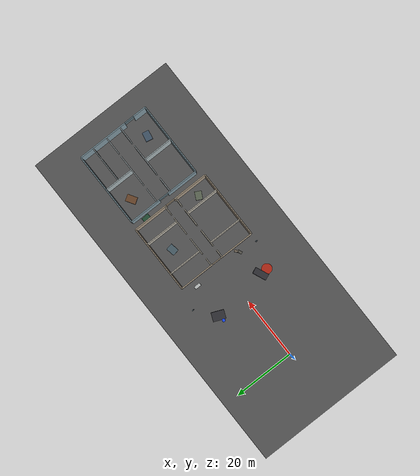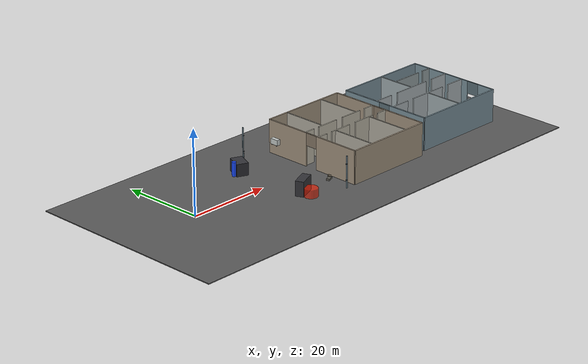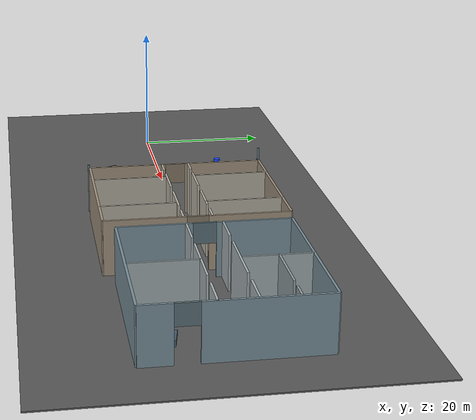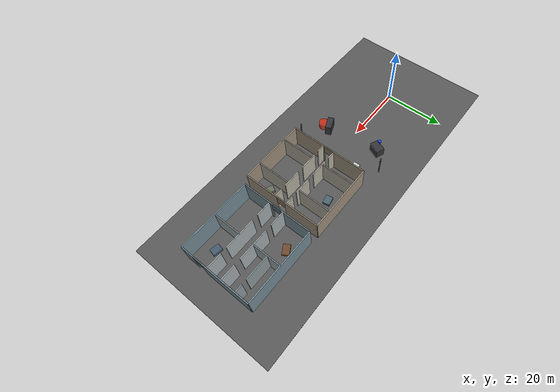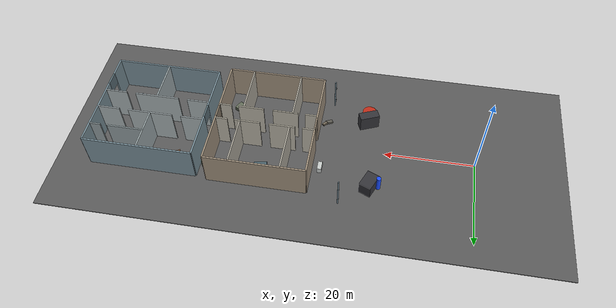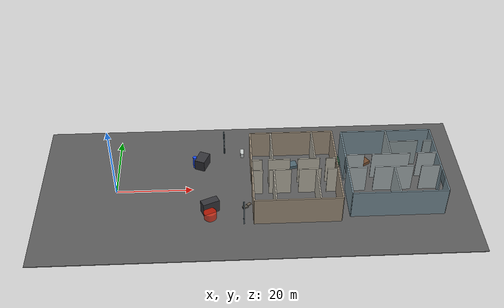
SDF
<sdf version="1.9">
 <world name="fire_scout_floor">
  <model name="floor">
   <static>true</static>
   <pose>36 0 0 0 0 0</pose>
   <link name="floor_link">
    <collision name="floor_collision">
     <pose>0 0 -0.1 0 0 0</pose>
     <geometry><box><size>112 50 0.2</size></box></geometry>
    </collision>
    <visual name="floor_visual">
     <pose>0 0 -0.1 0 0 0</pose>
     <geometry><box><size>112 50 0.2</size></box></geometry>
     <material><ambient>0.30 0.30 0.30 1</ambient><diffuse>0.35 0.35 0.35 1</diffuse></material>
    </visual>
   </link>
  </model>
  <model name="obstacle_region2">
   <static>true</static>
   <pose>22.5 9.6 1.5 0 0 -0.4</pose>
   <link name="link">
    <collision name="collision"><geometry><box><size>2.8 4 3</size></box></geometry></collision>
    <visual name="visual">
     <geometry><box><size>2.8 4 3</size></box></geometry>
     <material><ambient>0.20 0.20 0.22 1</ambient><diffuse>0.20 0.20 0.22 1</diffuse></material>
    </visual>
   </link>
  </model>
  <model name="obstacle_region4">
   <static>true</static>
   <pose>24.5 -8 1.8 0 0 0.4</pose>
   <link name="link">
    <collision name="collision"><geometry><box><size>4.4 2 3.6</size></box></geometry></collision>
    <visual name="visual">
     <geometry><box><size>4.4 2 3.6</size></box></geometry>
     <material><ambient>0.20 0.20 0.22 1</ambient><diffuse>0.20 0.20 0.22 1</diffuse></material>
    </visual>
   </link>
  </model>
  <model name="fire_02">
   <static>true</static>
   <pose>24.5 -10.4 1 0 0 0</pose>
   <link name="link">
    <visual name="visual">
     <geometry><cylinder><radius>1.6</radius><length>2</length></cylinder></geometry>
     <material><ambient>1.0 0.12 0.0 0.65</ambient><diffuse>1.0 0.12 0.0 0.65</diffuse></material>
    </visual>
   </link>
  </model>
  <model name="victim_02">
   <static>true</static>
   <pose>20.5 9.2 1.7 0 0 0</pose>
   <link name="link">
    <collision name="collision">
     <geometry><cylinder><radius>0.5</radius><length>3.4</length></cylinder></geometry>
    </collision>
    <visual name="visual">
     <geometry><cylinder><radius>0.5</radius><length>3.4</length></cylinder></geometry>
     <material><ambient>0.1 0.3 1.0 1</ambient><diffuse>0.1 0.3 1.0 1</diffuse></material>
    </visual>
   </link>
  </model>
  <model name="ac_outdoor_east">
   <static>true</static>
   <pose>33.23 9 4.4 0 0 1.5707963</pose>
   <link name="housing">
    <collision name="housing_collision"><geometry><box><size>2 0.9 1.3</size></box></geometry></collision>
    <visual name="housing_visual">
     <geometry><box><size>2 0.9 1.3</size></box></geometry>
     <material><ambient>0.78 0.80 0.79 1</ambient><diffuse>0.78 0.80 0.79 1</diffuse></material>
    </visual>
    <visual name="fan_visual">
     <pose>-0.36 -0.454 0 1.5707963 0 0</pose>
     <geometry><cylinder><radius>0.46</radius><length>0.016</length></cylinder></geometry>
     <material><ambient>0.12 0.14 0.15 1</ambient><diffuse>0.12 0.14 0.15 1</diffuse></material>
    </visual>
    <visual name="vent_0_visual">
     <pose>0.58 -0.46 -0.36 0 0 0</pose>
     <geometry><box><size>0.5 0.024 0.05</size></box></geometry>
     <material><ambient>0.24 0.26 0.27 1</ambient><diffuse>0.24 0.26 0.27 1</diffuse></material>
    </visual>
    <visual name="vent_1_visual">
     <pose>0.58 -0.46 -0.12 0 0 0</pose>
     <geometry><box><size>0.5 0.024 0.05</size></box></geometry>
     <material><ambient>0.24 0.26 0.27 1</ambient><diffuse>0.24 0.26 0.27 1</diffuse></material>
    </visual>
    <visual name="vent_2_visual">
     <pose>0.58 -0.46 0.12 0 0 0</pose>
     <geometry><box><size>0.5 0.024 0.05</size></box></geometry>
     <material><ambient>0.24 0.26 0.27 1</ambient><diffuse>0.24 0.26 0.27 1</diffuse></material>
    </visual>
    <visual name="vent_3_visual">
     <pose>0.58 -0.46 0.36 0 0 0</pose>
     <geometry><box><size>0.5 0.024 0.05</size></box></geometry>
     <material><ambient>0.24 0.26 0.27 1</ambient><diffuse>0.24 0.26 0.27 1</diffuse></material>
    </visual>
    <collision name="bracket_0_collision">
     <pose>-0.7 0.1 -0.74 0 0 0</pose>
     <geometry><box><size>0.12 0.72 0.16</size></box></geometry>
    </collision>
    <visual name="bracket_0_visual">
     <pose>-0.7 0.1 -0.74 0 0 0</pose>
     <geometry><box><size>0.12 0.72 0.16</size></box></geometry>
     <material><ambient>0.35 0.38 0.40 1</ambient><diffuse>0.35 0.38 0.40 1</diffuse></material>
    </visual>
    <collision name="bracket_1_collision">
     <pose>0.7 0.1 -0.74 0 0 0</pose>
     <geometry><box><size>0.12 0.72 0.16</size></box></geometry>
    </collision>
    <visual name="bracket_1_visual">
     <pose>0.7 0.1 -0.74 0 0 0</pose>
     <geometry><box><size>0.12 0.72 0.16</size></box></geometry>
     <material><ambient>0.35 0.38 0.40 1</ambient><diffuse>0.35 0.38 0.40 1</diffuse></material>
    </visual>
   </link>
  </model>
  <model name="water_pipe_north">
   <static>true</static>
   <pose>28.5 14.48 3.8 0 0 3.1415927</pose>
   <link name="pipe">
    <collision name="pipe_collision">
     <geometry><cylinder><radius>0.16</radius><length>7.6</length></cylinder></geometry>
    </collision>
    <visual name="pipe_visual">
     <geometry><cylinder><radius>0.16</radius><length>7.6</length></cylinder></geometry>
     <material><ambient>0.40 0.48 0.52 1</ambient><diffuse>0.40 0.48 0.52 1</diffuse></material>
    </visual>
    <collision name="wall_mount_0_collision">
     <pose>0 0.17 -1.9 0 0 0</pose>
     <geometry><box><size>0.24 0.22 0.16</size></box></geometry>
    </collision>
    <visual name="wall_mount_0_visual">
     <pose>0 0.17 -1.9 0 0 0</pose>
     <geometry><box><size>0.24 0.22 0.16</size></box></geometry>
     <material><ambient>0.24 0.28 0.31 1</ambient><diffuse>0.24 0.28 0.31 1</diffuse></material>
    </visual>
    <collision name="wall_mount_1_collision">
     <pose>0 0.17 1.9 0 0 0</pose>
     <geometry><box><size>0.24 0.22 0.16</size></box></geometry>
    </collision>
    <visual name="wall_mount_1_visual">
     <pose>0 0.17 1.9 0 0 0</pose>
     <geometry><box><size>0.24 0.22 0.16</size></box></geometry>
     <material><ambient>0.24 0.28 0.31 1</ambient><diffuse>0.24 0.28 0.31 1</diffuse></material>
    </visual>
   </link>
  </model>
  <model name="water_pipe_east">
   <static>true</static>
   <pose>32.98 -13 3.8 0 0 1.5707963</pose>
   <link name="pipe">
    <collision name="pipe_collision">
     <geometry><cylinder><radius>0.16</radius><length>7.6</length></cylinder></geometry>
    </collision>
    <visual name="pipe_visual">
     <geometry><cylinder><radius>0.16</radius><length>7.6</length></cylinder></geometry>
     <material><ambient>0.40 0.48 0.52 1</ambient><diffuse>0.40 0.48 0.52 1</diffuse></material>
    </visual>
    <collision name="wall_mount_0_collision">
     <pose>0 0.17 -1.9 0 0 0</pose>
     <geometry><box><size>0.24 0.22 0.16</size></box></geometry>
    </collision>
    <visual name="wall_mount_0_visual">
     <pose>0 0.17 -1.9 0 0 0</pose>
     <geometry><box><size>0.24 0.22 0.16</size></box></geometry>
     <material><ambient>0.24 0.28 0.31 1</ambient><diffuse>0.24 0.28 0.31 1</diffuse></material>
    </visual>
    <collision name="wall_mount_1_collision">
     <pose>0 0.17 1.9 0 0 0</pose>
     <geometry><box><size>0.24 0.22 0.16</size></box></geometry>
    </collision>
    <visual name="wall_mount_1_visual">
     <pose>0 0.17 1.9 0 0 0</pose>
     <geometry><box><size>0.24 0.22 0.16</size></box></geometry>
     <material><ambient>0.24 0.28 0.31 1</ambient><diffuse>0.24 0.28 0.31 1</diffuse></material>
    </visual>
   </link>
  </model>
  <model name="adjacent_building_b">
   <static>true</static>
   <pose>46.5 0 0 0 0 0</pose>
   <link name="structure">
    <collision name="north_wall_collision">
     <pose>0 13 4 0 0 0</pose>
     <geometry><box><size>22 0.35 8</size></box></geometry>
    </collision>
    <visual name="north_wall_visual">
     <pose>0 13 4 0 0 0</pose>
     <geometry><box><size>22 0.35 8</size></box></geometry>
     <material><ambient>0.64 0.58 0.50 1</ambient><diffuse>0.64 0.58 0.50 1</diffuse></material>
    </visual>
    <collision name="south_wall_collision">
     <pose>0 -13 4 0 0 0</pose>
     <geometry><box><size>22 0.35 8</size></box></geometry>
    </collision>
    <visual name="south_wall_visual">
     <pose>0 -13 4 0 0 0</pose>
     <geometry><box><size>22 0.35 8</size></box></geometry>
     <material><ambient>0.64 0.58 0.50 1</ambient><diffuse>0.64 0.58 0.50 1</diffuse></material>
    </visual>
    <collision name="west_wall_south_collision">
     <pose>-11 -7.25 4 0 0 0</pose>
     <geometry><box><size>0.35 11.5 8</size></box></geometry>
    </collision>
    <visual name="west_wall_south_visual">
     <pose>-11 -7.25 4 0 0 0</pose>
     <geometry><box><size>0.35 11.5 8</size></box></geometry>
     <material><ambient>0.64 0.58 0.50 1</ambient><diffuse>0.64 0.58 0.50 1</diffuse></material>
    </visual>
    <collision name="west_wall_north_collision">
     <pose>-11 7.25 4 0 0 0</pose>
     <geometry><box><size>0.35 11.5 8</size></box></geometry>
    </collision>
    <visual name="west_wall_north_visual">
     <pose>-11 7.25 4 0 0 0</pose>
     <geometry><box><size>0.35 11.5 8</size></box></geometry>
     <material><ambient>0.64 0.58 0.50 1</ambient><diffuse>0.64 0.58 0.50 1</diffuse></material>
    </visual>
    <collision name="west_entry_header_collision">
     <pose>-11 0 6.5 0 0 0</pose>
     <geometry><box><size>0.35 3 3</size></box></geometry>
    </collision>
    <visual name="west_entry_header_visual">
     <pose>-11 0 6.5 0 0 0</pose>
     <geometry><box><size>0.35 3 3</size></box></geometry>
     <material><ambient>0.52 0.47 0.40 1</ambient><diffuse>0.52 0.47 0.40 1</diffuse></material>
    </visual>
    <collision name="east_wall_south_collision">
     <pose>11 -7.25 4 0 0 0</pose>
     <geometry><box><size>0.35 11.5 8</size></box></geometry>
    </collision>
    <visual name="east_wall_south_visual">
     <pose>11 -7.25 4 0 0 0</pose>
     <geometry><box><size>0.35 11.5 8</size></box></geometry>
     <material><ambient>0.64 0.58 0.50 1</ambient><diffuse>0.64 0.58 0.50 1</diffuse></material>
    </visual>
    <collision name="east_wall_north_collision">
     <pose>11 7.25 4 0 0 0</pose>
     <geometry><box><size>0.35 11.5 8</size></box></geometry>
    </collision>
    <visual name="east_wall_north_visual">
     <pose>11 7.25 4 0 0 0</pose>
     <geometry><box><size>0.35 11.5 8</size></box></geometry>
     <material><ambient>0.64 0.58 0.50 1</ambient><diffuse>0.64 0.58 0.50 1</diffuse></material>
    </visual>
    <collision name="east_entry_header_collision">
     <pose>11 0 6.5 0 0 0</pose>
     <geometry><box><size>0.35 3 3</size></box></geometry>
    </collision>
    <visual name="east_entry_header_visual">
     <pose>11 0 6.5 0 0 0</pose>
     <geometry><box><size>0.35 3 3</size></box></geometry>
     <material><ambient>0.52 0.47 0.40 1</ambient><diffuse>0.52 0.47 0.40 1</diffuse></material>
    </visual>
    <collision name="north_front_0_collision">
     <pose>-9.65 2 4 0 0 0</pose>
     <geometry><box><size>2.7 0.30 8</size></box></geometry>
    </collision>
    <visual name="north_front_0_visual">
     <pose>-9.65 2 4 0 0 0</pose>
     <geometry><box><size>2.7 0.30 8</size></box></geometry>
     <material><ambient>0.74 0.72 0.66 1</ambient><diffuse>0.74 0.72 0.66 1</diffuse></material>
    </visual>
    <collision name="north_front_1_collision">
     <pose>-3.85 2 4 0 0 0</pose>
     <geometry><box><size>5.7 0.30 8</size></box></geometry>
    </collision>
    <visual name="north_front_1_visual">
     <pose>-3.85 2 4 0 0 0</pose>
     <geometry><box><size>5.7 0.30 8</size></box></geometry>
     <material><ambient>0.74 0.72 0.66 1</ambient><diffuse>0.74 0.72 0.66 1</diffuse></material>
    </visual>
    <collision name="north_front_2_collision">
     <pose>3.85 2 4 0 0 0</pose>
     <geometry><box><size>5.7 0.30 8</size></box></geometry>
    </collision>
    <visual name="north_front_2_visual">
     <pose>3.85 2 4 0 0 0</pose>
     <geometry><box><size>5.7 0.30 8</size></box></geometry>
     <material><ambient>0.74 0.72 0.66 1</ambient><diffuse>0.74 0.72 0.66 1</diffuse></material>
    </visual>
    <collision name="north_front_3_collision">
     <pose>9.65 2 4 0 0 0</pose>
     <geometry><box><size>2.7 0.30 8</size></box></geometry>
    </collision>
    <visual name="north_front_3_visual">
     <pose>9.65 2 4 0 0 0</pose>
     <geometry><box><size>2.7 0.30 8</size></box></geometry>
     <material><ambient>0.74 0.72 0.66 1</ambient><diffuse>0.74 0.72 0.66 1</diffuse></material>
    </visual>
    <collision name="south_front_0_collision">
     <pose>-9.65 -2 4 0 0 0</pose>
     <geometry><box><size>2.7 0.30 8</size></box></geometry>
    </collision>
    <visual name="south_front_0_visual">
     <pose>-9.65 -2 4 0 0 0</pose>
     <geometry><box><size>2.7 0.30 8</size></box></geometry>
     <material><ambient>0.74 0.72 0.66 1</ambient><diffuse>0.74 0.72 0.66 1</diffuse></material>
    </visual>
    <collision name="south_front_1_collision">
     <pose>-3.85 -2 4 0 0 0</pose>
     <geometry><box><size>5.7 0.30 8</size></box></geometry>
    </collision>
    <visual name="south_front_1_visual">
     <pose>-3.85 -2 4 0 0 0</pose>
     <geometry><box><size>5.7 0.30 8</size></box></geometry>
     <material><ambient>0.74 0.72 0.66 1</ambient><diffuse>0.74 0.72 0.66 1</diffuse></material>
    </visual>
    <collision name="south_front_2_collision">
     <pose>3.85 -2 4 0 0 0</pose>
     <geometry><box><size>5.7 0.30 8</size></box></geometry>
    </collision>
    <visual name="south_front_2_visual">
     <pose>3.85 -2 4 0 0 0</pose>
     <geometry><box><size>5.7 0.30 8</size></box></geometry>
     <material><ambient>0.74 0.72 0.66 1</ambient><diffuse>0.74 0.72 0.66 1</diffuse></material>
    </visual>
    <collision name="south_front_3_collision">
     <pose>9.65 -2 4 0 0 0</pose>
     <geometry><box><size>2.7 0.30 8</size></box></geometry>
    </collision>
    <visual name="south_front_3_visual">
     <pose>9.65 -2 4 0 0 0</pose>
     <geometry><box><size>2.7 0.30 8</size></box></geometry>
     <material><ambient>0.74 0.72 0.66 1</ambient><diffuse>0.74 0.72 0.66 1</diffuse></material>
    </visual>
    <collision name="north_divider_w_collision">
     <pose>-5.5 7.5 4 0 0 0</pose>
     <geometry><box><size>0.30 11 8</size></box></geometry>
    </collision>
    <visual name="north_divider_w_visual">
     <pose>-5.5 7.5 4 0 0 0</pose>
     <geometry><box><size>0.30 11 8</size></box></geometry>
     <material><ambient>0.70 0.68 0.63 1</ambient><diffuse>0.70 0.68 0.63 1</diffuse></material>
    </visual>
    <collision name="north_divider_e_collision">
     <pose>5.5 7.5 4 0 0 0</pose>
     <geometry><box><size>0.30 11 8</size></box></geometry>
    </collision>
    <visual name="north_divider_e_visual">
     <pose>5.5 7.5 4 0 0 0</pose>
     <geometry><box><size>0.30 11 8</size></box></geometry>
     <material><ambient>0.70 0.68 0.63 1</ambient><diffuse>0.70 0.68 0.63 1</diffuse></material>
    </visual>
    <collision name="south_divider_w_collision">
     <pose>-5.5 -7.5 4 0 0 0</pose>
     <geometry><box><size>0.30 11 8</size></box></geometry>
    </collision>
    <visual name="south_divider_w_visual">
     <pose>-5.5 -7.5 4 0 0 0</pose>
     <geometry><box><size>0.30 11 8</size></box></geometry>
     <material><ambient>0.70 0.68 0.63 1</ambient><diffuse>0.70 0.68 0.63 1</diffuse></material>
    </visual>
    <collision name="south_divider_e_collision">
     <pose>5.5 -7.5 4 0 0 0</pose>
     <geometry><box><size>0.30 11 8</size></box></geometry>
    </collision>
    <visual name="south_divider_e_visual">
     <pose>5.5 -7.5 4 0 0 0</pose>
     <geometry><box><size>0.30 11 8</size></box></geometry>
     <material><ambient>0.70 0.68 0.63 1</ambient><diffuse>0.70 0.68 0.63 1</diffuse></material>
    </visual>
   </link>
  </model>
  <model name="adjacent_building_c">
   <static>true</static>
   <pose>72 0.5 0 0 0 0</pose>
   <link name="structure">
    <collision name="north_wall_collision">
     <pose>0 12 4 0 0 0</pose>
     <geometry><box><size>24 0.35 8</size></box></geometry>
    </collision>
    <visual name="north_wall_visual">
     <pose>0 12 4 0 0 0</pose>
     <geometry><box><size>24 0.35 8</size></box></geometry>
     <material><ambient>0.48 0.57 0.61 1</ambient><diffuse>0.48 0.57 0.61 1</diffuse></material>
    </visual>
    <collision name="south_wall_collision">
     <pose>0 -12 4 0 0 0</pose>
     <geometry><box><size>24 0.35 8</size></box></geometry>
    </collision>
    <visual name="south_wall_visual">
     <pose>0 -12 4 0 0 0</pose>
     <geometry><box><size>24 0.35 8</size></box></geometry>
     <material><ambient>0.48 0.57 0.61 1</ambient><diffuse>0.48 0.57 0.61 1</diffuse></material>
    </visual>
    <collision name="west_wall_south_collision">
     <pose>-12 -6.8 4 0 0 0</pose>
     <geometry><box><size>0.35 10.4 8</size></box></geometry>
    </collision>
    <visual name="west_wall_south_visual">
     <pose>-12 -6.8 4 0 0 0</pose>
     <geometry><box><size>0.35 10.4 8</size></box></geometry>
     <material><ambient>0.48 0.57 0.61 1</ambient><diffuse>0.48 0.57 0.61 1</diffuse></material>
    </visual>
    <collision name="west_wall_north_collision">
     <pose>-12 6.8 4 0 0 0</pose>
     <geometry><box><size>0.35 10.4 8</size></box></geometry>
    </collision>
    <visual name="west_wall_north_visual">
     <pose>-12 6.8 4 0 0 0</pose>
     <geometry><box><size>0.35 10.4 8</size></box></geometry>
     <material><ambient>0.48 0.57 0.61 1</ambient><diffuse>0.48 0.57 0.61 1</diffuse></material>
    </visual>
    <collision name="west_entry_header_collision">
     <pose>-12 0 6.5 0 0 0</pose>
     <geometry><box><size>0.35 3.2 3</size></box></geometry>
    </collision>
    <visual name="west_entry_header_visual">
     <pose>-12 0 6.5 0 0 0</pose>
     <geometry><box><size>0.35 3.2 3</size></box></geometry>
     <material><ambient>0.36 0.44 0.47 1</ambient><diffuse>0.36 0.44 0.47 1</diffuse></material>
    </visual>
    <collision name="east_wall_low_collision">
     <pose>12 -9.8 4 0 0 0</pose>
     <geometry><box><size>0.35 4.4 8</size></box></geometry>
    </collision>
    <visual name="east_wall_low_visual">
     <pose>12 -9.8 4 0 0 0</pose>
     <geometry><box><size>0.35 4.4 8</size></box></geometry>
     <material><ambient>0.48 0.57 0.61 1</ambient><diffuse>0.48 0.57 0.61 1</diffuse></material>
    </visual>
    <collision name="east_wall_high_collision">
     <pose>12 3.8 4 0 0 0</pose>
     <geometry><box><size>0.35 16.4 8</size></box></geometry>
    </collision>
    <visual name="east_wall_high_visual">
     <pose>12 3.8 4 0 0 0</pose>
     <geometry><box><size>0.35 16.4 8</size></box></geometry>
     <material><ambient>0.48 0.57 0.61 1</ambient><diffuse>0.48 0.57 0.61 1</diffuse></material>
    </visual>
    <collision name="east_entry_header_collision">
     <pose>12 -6 6.5 0 0 0</pose>
     <geometry><box><size>0.35 3.2 3</size></box></geometry>
    </collision>
    <visual name="east_entry_header_visual">
     <pose>12 -6 6.5 0 0 0</pose>
     <geometry><box><size>0.35 3.2 3</size></box></geometry>
     <material><ambient>0.36 0.44 0.47 1</ambient><diffuse>0.36 0.44 0.47 1</diffuse></material>
    </visual>
    <collision name="north_front_w_collision">
     <pose>-9.5 2.5 4 0 0 0</pose>
     <geometry><box><size>5 0.30 8</size></box></geometry>
    </collision>
    <visual name="north_front_w_visual">
     <pose>-9.5 2.5 4 0 0 0</pose>
     <geometry><box><size>5 0.30 8</size></box></geometry>
     <material><ambient>0.67 0.71 0.72 1</ambient><diffuse>0.67 0.71 0.72 1</diffuse></material>
    </visual>
    <collision name="north_front_mid_collision">
     <pose>0 2.5 4 0 0 0</pose>
     <geometry><box><size>10 0.30 8</size></box></geometry>
    </collision>
    <visual name="north_front_mid_visual">
     <pose>0 2.5 4 0 0 0</pose>
     <geometry><box><size>10 0.30 8</size></box></geometry>
     <material><ambient>0.67 0.71 0.72 1</ambient><diffuse>0.67 0.71 0.72 1</diffuse></material>
    </visual>
    <collision name="north_front_e_collision">
     <pose>9.5 2.5 4 0 0 0</pose>
     <geometry><box><size>5 0.30 8</size></box></geometry>
    </collision>
    <visual name="north_front_e_visual">
     <pose>9.5 2.5 4 0 0 0</pose>
     <geometry><box><size>5 0.30 8</size></box></geometry>
     <material><ambient>0.67 0.71 0.72 1</ambient><diffuse>0.67 0.71 0.72 1</diffuse></material>
    </visual>
    <collision name="south_front_w_collision">
     <pose>-9.5 -2.5 4 0 0 0</pose>
     <geometry><box><size>5 0.30 8</size></box></geometry>
    </collision>
    <visual name="south_front_w_visual">
     <pose>-9.5 -2.5 4 0 0 0</pose>
     <geometry><box><size>5 0.30 8</size></box></geometry>
     <material><ambient>0.67 0.71 0.72 1</ambient><diffuse>0.67 0.71 0.72 1</diffuse></material>
    </visual>
    <collision name="south_front_mid_collision">
     <pose>0 -2.5 4 0 0 0</pose>
     <geometry><box><size>10 0.30 8</size></box></geometry>
    </collision>
    <visual name="south_front_mid_visual">
     <pose>0 -2.5 4 0 0 0</pose>
     <geometry><box><size>10 0.30 8</size></box></geometry>
     <material><ambient>0.67 0.71 0.72 1</ambient><diffuse>0.67 0.71 0.72 1</diffuse></material>
    </visual>
    <collision name="south_front_e_collision">
     <pose>9.5 -2.5 4 0 0 0</pose>
     <geometry><box><size>5 0.30 8</size></box></geometry>
    </collision>
    <visual name="south_front_e_visual">
     <pose>9.5 -2.5 4 0 0 0</pose>
     <geometry><box><size>5 0.30 8</size></box></geometry>
     <material><ambient>0.67 0.71 0.72 1</ambient><diffuse>0.67 0.71 0.72 1</diffuse></material>
    </visual>
    <collision name="north_divider_collision">
     <pose>0 7.25 4 0 0 0</pose>
     <geometry><box><size>0.30 9.5 8</size></box></geometry>
    </collision>
    <visual name="north_divider_visual">
     <pose>0 7.25 4 0 0 0</pose>
     <geometry><box><size>0.30 9.5 8</size></box></geometry>
     <material><ambient>0.63 0.68 0.69 1</ambient><diffuse>0.63 0.68 0.69 1</diffuse></material>
    </visual>
    <collision name="south_divider_collision">
     <pose>0 -7.25 4 0 0 0</pose>
     <geometry><box><size>0.30 9.5 8</size></box></geometry>
    </collision>
    <visual name="south_divider_visual">
     <pose>0 -7.25 4 0 0 0</pose>
     <geometry><box><size>0.30 9.5 8</size></box></geometry>
     <material><ambient>0.63 0.68 0.69 1</ambient><diffuse>0.63 0.68 0.69 1</diffuse></material>
    </visual>
    <collision name="utility_partition_w_collision">
     <pose>4 7.5 4 0 0 0</pose>
     <geometry><box><size>8 0.30 8</size></box></geometry>
    </collision>
    <visual name="utility_partition_w_visual">
     <pose>4 7.5 4 0 0 0</pose>
     <geometry><box><size>8 0.30 8</size></box></geometry>
     <material><ambient>0.58 0.63 0.64 1</ambient><diffuse>0.58 0.63 0.64 1</diffuse></material>
    </visual>
    <collision name="utility_partition_e_collision">
     <pose>10.75 7.5 4 0 0 0</pose>
     <geometry><box><size>2.5 0.30 8</size></box></geometry>
    </collision>
    <visual name="utility_partition_e_visual">
     <pose>10.75 7.5 4 0 0 0</pose>
     <geometry><box><size>2.5 0.30 8</size></box></geometry>
     <material><ambient>0.58 0.63 0.64 1</ambient><diffuse>0.58 0.63 0.64 1</diffuse></material>
    </visual>
   </link>
  </model>
  <model name="toppled_cabinet_b_north">
   <static>true</static>
   <pose>46.5 8.2 0.46 1.5707963 0 0.18</pose>
   <link name="cabinet">
    <collision name="body_collision"><geometry><box><size>2.8 0.9 2.2</size></box></geometry></collision>
    <visual name="body_visual">
     <geometry><box><size>2.8 0.9 2.2</size></box></geometry>
     <material><ambient>0.24 0.31 0.34 1</ambient><diffuse>0.30 0.39 0.43 1</diffuse></material>
    </visual>
    <visual name="shelf_0_visual">
     <pose>-0.75 -0.46 0 0 0 0</pose>
     <geometry><box><size>0.04 0.02 1.95</size></box></geometry>
     <material><ambient>0.10 0.12 0.13 1</ambient><diffuse>0.10 0.12 0.13 1</diffuse></material>
    </visual>
    <visual name="shelf_1_visual">
     <pose>0 -0.46 0 0 0 0</pose>
     <geometry><box><size>0.04 0.02 1.95</size></box></geometry>
     <material><ambient>0.10 0.12 0.13 1</ambient><diffuse>0.10 0.12 0.13 1</diffuse></material>
    </visual>
    <visual name="shelf_2_visual">
     <pose>0.75 -0.46 0 0 0 0</pose>
     <geometry><box><size>0.04 0.02 1.95</size></box></geometry>
     <material><ambient>0.10 0.12 0.13 1</ambient><diffuse>0.10 0.12 0.13 1</diffuse></material>
    </visual>
   </link>
  </model>
  <model name="toppled_cabinet_b_south_east">
   <static>true</static>
   <pose>54.4 -8.0 0.46 1.5707963 0 -0.48</pose>
   <link name="cabinet">
    <collision name="body_collision"><geometry><box><size>2.6 0.9 2.1</size></box></geometry></collision>
    <visual name="body_visual">
     <geometry><box><size>2.6 0.9 2.1</size></box></geometry>
     <material><ambient>0.32 0.35 0.29 1</ambient><diffuse>0.39 0.43 0.35 1</diffuse></material>
    </visual>
    <visual name="door_seam_visual">
     <pose>0 -0.456 0 0 0 0</pose>
     <geometry><box><size>0.035 0.015 1.88</size></box></geometry>
     <material><ambient>0.09 0.10 0.08 1</ambient><diffuse>0.09 0.10 0.08 1</diffuse></material>
    </visual>
   </link>
  </model>
  <model name="toppled_cabinet_c_north_west">
   <static>true</static>
   <pose>66 8.5 0.46 1.5707963 0 0.55</pose>
   <link name="cabinet">
    <collision name="body_collision"><geometry><box><size>3.2 0.9 2.2</size></box></geometry></collision>
    <visual name="body_visual">
     <geometry><box><size>3.2 0.9 2.2</size></box></geometry>
     <material><ambient>0.36 0.24 0.16 1</ambient><diffuse>0.44 0.29 0.18 1</diffuse></material>
    </visual>
    <visual name="door_seam_visual">
     <pose>0 -0.456 0 0 0 0</pose>
     <geometry><box><size>0.035 0.015 1.95</size></box></geometry>
     <material><ambient>0.10 0.08 0.06 1</ambient><diffuse>0.10 0.08 0.06 1</diffuse></material>
    </visual>
   </link>
  </model>
  <model name="toppled_cabinet_c_south_east">
   <static>true</static>
   <pose>78 -7 0.46 1.5707963 0 -0.20</pose>
   <link name="cabinet">
    <collision name="body_collision"><geometry><box><size>2.9 0.9 2.2</size></box></geometry></collision>
    <visual name="body_visual">
     <geometry><box><size>2.9 0.9 2.2</size></box></geometry>
     <material><ambient>0.22 0.28 0.35 1</ambient><diffuse>0.27 0.35 0.43 1</diffuse></material>
    </visual>
    <visual name="door_seam_visual">
     <pose>0 -0.456 0 0 0 0</pose>
     <geometry><box><size>0.035 0.015 1.95</size></box></geometry>
     <material><ambient>0.08 0.09 0.11 1</ambient><diffuse>0.08 0.09 0.11 1</diffuse></material>
    </visual>
   </link>
  </model>
  <model name="alley_dumpster_b_c">
   <static>true</static>
   <pose>58.75 8.5 0.9 0 0 0.08</pose>
   <link name="body">
    <collision name="collision"><geometry><box><size>1.4 2.4 1.8</size></box></geometry></collision>
    <visual name="visual">
     <geometry><box><size>1.4 2.4 1.8</size></box></geometry>
     <material><ambient>0.12 0.26 0.19 1</ambient><diffuse>0.14 0.32 0.22 1</diffuse></material>
    </visual>
   </link>
  </model>
  <model name="fallen_debris_main_alley">
   <static>true</static>
   <pose>34 -7 0.28 0 0 0.42</pose>
   <link name="debris">
    <collision name="slab_0_collision">
     <pose>-0.55 0 0 0 0 0</pose>
     <geometry><box><size>1.5 0.8 0.45</size></box></geometry>
    </collision>
    <visual name="slab_0_visual">
     <pose>-0.55 0 0 0 0 0</pose>
     <geometry><box><size>1.5 0.8 0.45</size></box></geometry>
     <material><ambient>0.31 0.30 0.28 1</ambient><diffuse>0.36 0.35 0.32 1</diffuse></material>
    </visual>
    <collision name="slab_1_collision">
     <pose>0.55 0.32 0.12 0.18 0.12 0.35</pose>
     <geometry><box><size>1.2 0.65 0.35</size></box></geometry>
    </collision>
    <visual name="slab_1_visual">
     <pose>0.55 0.32 0.12 0.18 0.12 0.35</pose>
     <geometry><box><size>1.2 0.65 0.35</size></box></geometry>
     <material><ambient>0.38 0.34 0.29 1</ambient><diffuse>0.42 0.38 0.32 1</diffuse></material>
    </visual>
   </link>
  </model>
 </world>
</sdf>
